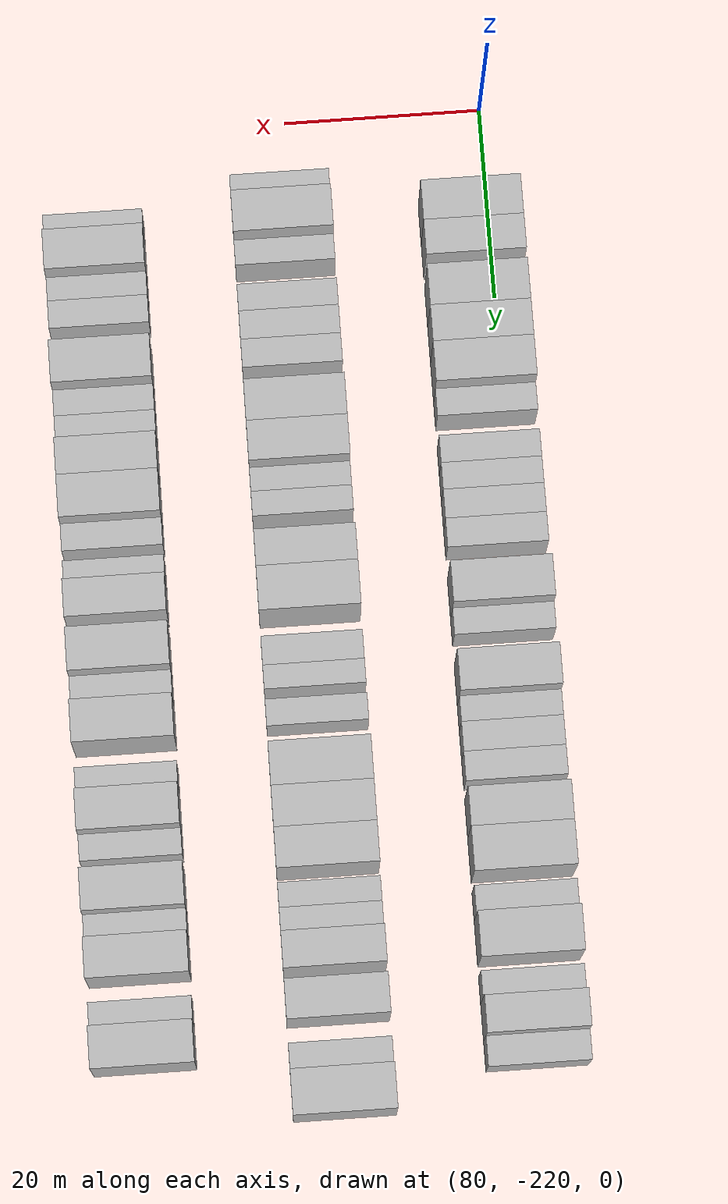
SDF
<sdf version="1.6">
 <world name="default">
  <model name="building_566">
   <static>1</static>
   <pose>82.0000 -208.0822 0 0.000000 0.000000 0.000000</pose>
   <link name="link">
    <pose>0 0 4.50 0 0 0</pose>
    <collision name="collision"><geometry><box><size>10.0000 4.1189 9.0000</size></box></geometry></collision>
    <visual name="visual">
     <cast_shadows>0</cast_shadows>
     <geometry><box><size>10.0000 4.1189 9.0000</size></box></geometry>
     <material>
      <script>
       <uri>model://HANNAS_wall/materials/scripts</uri>
       <uri>model://HANNAS_wall/materials/textures</uri>
       <name>vrc/HANNAS_wall</name>
      </script>
     </material>
    </visual>
   </link>
  </model>
  <model name="building_567">
   <static>1</static>
   <pose>82.0000 -204.2216 0 0.000000 0.000000 0.000000</pose>
   <link name="link">
    <pose>0 0 4.50 0 0 0</pose>
    <collision name="collision"><geometry><box><size>10.0000 3.6021 9.0000</size></box></geometry></collision>
    <visual name="visual">
     <cast_shadows>0</cast_shadows>
     <geometry><box><size>10.0000 3.6021 9.0000</size></box></geometry>
     <material>
      <script>
       <uri>model://HANNAS_wall/materials/scripts</uri>
       <uri>model://HANNAS_wall/materials/textures</uri>
       <name>vrc/HANNAS_wall</name>
      </script>
     </material>
    </visual>
   </link>
  </model>
  <model name="building_568">
   <static>1</static>
   <pose>82.0000 -199.3043 0 0.000000 0.000000 0.000000</pose>
   <link name="link">
    <pose>0 0 4.50 0 0 0</pose>
    <collision name="collision"><geometry><box><size>10.0000 4.2326 9.0000</size></box></geometry></collision>
    <visual name="visual">
     <cast_shadows>0</cast_shadows>
     <geometry><box><size>10.0000 4.2326 9.0000</size></box></geometry>
     <material>
      <script>
       <uri>model://HANNAS_wall/materials/scripts</uri>
       <uri>model://HANNAS_wall/materials/textures</uri>
       <name>vrc/HANNAS_wall</name>
      </script>
     </material>
    </visual>
   </link>
  </model>
  <model name="building_569">
   <static>1</static>
   <pose>82.0000 -195.3294 0 0.000000 0.000000 0.000000</pose>
   <link name="link">
    <pose>0 0 4.50 0 0 0</pose>
    <collision name="collision"><geometry><box><size>10.0000 3.7172 9.0000</size></box></geometry></collision>
    <visual name="visual">
     <cast_shadows>0</cast_shadows>
     <geometry><box><size>10.0000 3.7172 9.0000</size></box></geometry>
     <material>
      <script>
       <uri>model://HANNAS_wall/materials/scripts</uri>
       <uri>model://HANNAS_wall/materials/textures</uri>
       <name>vrc/HANNAS_wall</name>
      </script>
     </material>
    </visual>
   </link>
  </model>
  <model name="building_570">
   <static>1</static>
   <pose>82.0000 -191.4205 0 0.000000 0.000000 0.000000</pose>
   <link name="link">
    <pose>0 0 4.50 0 0 0</pose>
    <collision name="collision"><geometry><box><size>10.0000 4.1006 9.0000</size></box></geometry></collision>
    <visual name="visual">
     <cast_shadows>0</cast_shadows>
     <geometry><box><size>10.0000 4.1006 9.0000</size></box></geometry>
     <material>
      <script>
       <uri>model://HANNAS_wall/materials/scripts</uri>
       <uri>model://HANNAS_wall/materials/textures</uri>
       <name>vrc/HANNAS_wall</name>
      </script>
     </material>
    </visual>
   </link>
  </model>
  <model name="building_571">
   <static>1</static>
   <pose>82.0000 -187.9681 0 0.000000 0.000000 0.000000</pose>
   <link name="link">
    <pose>0 0 3.00 0 0 0</pose>
    <collision name="collision"><geometry><box><size>10.0000 2.8042 6.0000</size></box></geometry></collision>
    <visual name="visual">
     <cast_shadows>0</cast_shadows>
     <geometry><box><size>10.0000 2.8042 6.0000</size></box></geometry>
     <material>
      <script>
       <uri>model://HANNAS_wall/materials/scripts</uri>
       <uri>model://HANNAS_wall/materials/textures</uri>
       <name>vrc/HANNAS_wall</name>
      </script>
     </material>
    </visual>
   </link>
  </model>
  <model name="building_572">
   <static>1</static>
   <pose>82.0000 -183.1764 0 0.000000 0.000000 0.000000</pose>
   <link name="link">
    <pose>0 0 3.00 0 0 0</pose>
    <collision name="collision"><geometry><box><size>10.0000 2.7790 6.0000</size></box></geometry></collision>
    <visual name="visual">
     <cast_shadows>0</cast_shadows>
     <geometry><box><size>10.0000 2.7790 6.0000</size></box></geometry>
     <material>
      <script>
       <uri>model://HANNAS_wall/materials/scripts</uri>
       <uri>model://HANNAS_wall/materials/textures</uri>
       <name>vrc/HANNAS_wall</name>
      </script>
     </material>
    </visual>
   </link>
  </model>
  <model name="building_573">
   <static>1</static>
   <pose>82.0000 -180.4270 0 0.000000 0.000000 0.000000</pose>
   <link name="link">
    <pose>0 0 3.00 0 0 0</pose>
    <collision name="collision"><geometry><box><size>10.0000 2.7198 6.0000</size></box></geometry></collision>
    <visual name="visual">
     <cast_shadows>0</cast_shadows>
     <geometry><box><size>10.0000 2.7198 6.0000</size></box></geometry>
     <material>
      <script>
       <uri>model://HANNAS_wall/materials/scripts</uri>
       <uri>model://HANNAS_wall/materials/textures</uri>
       <name>vrc/HANNAS_wall</name>
      </script>
     </material>
    </visual>
   </link>
  </model>
  <model name="building_574">
   <static>1</static>
   <pose>82.0000 -177.5936 0 0.000000 0.000000 0.000000</pose>
   <link name="link">
    <pose>0 0 3.00 0 0 0</pose>
    <collision name="collision"><geometry><box><size>10.0000 2.9471 6.0000</size></box></geometry></collision>
    <visual name="visual">
     <cast_shadows>0</cast_shadows>
     <geometry><box><size>10.0000 2.9471 6.0000</size></box></geometry>
     <material>
      <script>
       <uri>model://HANNAS_wall/materials/scripts</uri>
       <uri>model://HANNAS_wall/materials/textures</uri>
       <name>vrc/HANNAS_wall</name>
      </script>
     </material>
    </visual>
   </link>
  </model>
  <model name="building_575">
   <static>1</static>
   <pose>82.0000 -174.6498 0 0.000000 0.000000 0.000000</pose>
   <link name="link">
    <pose>0 0 3.00 0 0 0</pose>
    <collision name="collision"><geometry><box><size>10.0000 2.9405 6.0000</size></box></geometry></collision>
    <visual name="visual">
     <cast_shadows>0</cast_shadows>
     <geometry><box><size>10.0000 2.9405 6.0000</size></box></geometry>
     <material>
      <script>
       <uri>model://HANNAS_wall/materials/scripts</uri>
       <uri>model://HANNAS_wall/materials/textures</uri>
       <name>vrc/HANNAS_wall</name>
      </script>
     </material>
    </visual>
   </link>
  </model>
  <model name="building_576">
   <static>1</static>
   <pose>82.0000 -169.1119 0 0.000000 0.000000 0.000000</pose>
   <link name="link">
    <pose>0 0 4.50 0 0 0</pose>
    <collision name="collision"><geometry><box><size>10.0000 4.1353 9.0000</size></box></geometry></collision>
    <visual name="visual">
     <cast_shadows>0</cast_shadows>
     <geometry><box><size>10.0000 4.1353 9.0000</size></box></geometry>
     <material>
      <script>
       <uri>model://HANNAS_wall/materials/scripts</uri>
       <uri>model://HANNAS_wall/materials/textures</uri>
       <name>vrc/HANNAS_wall</name>
      </script>
     </material>
    </visual>
   </link>
  </model>
  <model name="building_577">
   <static>1</static>
   <pose>82.0000 -165.7086 0 0.000000 0.000000 0.000000</pose>
   <link name="link">
    <pose>0 0 3.00 0 0 0</pose>
    <collision name="collision"><geometry><box><size>10.0000 2.6713 6.0000</size></box></geometry></collision>
    <visual name="visual">
     <cast_shadows>0</cast_shadows>
     <geometry><box><size>10.0000 2.6713 6.0000</size></box></geometry>
     <material>
      <script>
       <uri>model://HANNAS_wall/materials/scripts</uri>
       <uri>model://HANNAS_wall/materials/textures</uri>
       <name>vrc/HANNAS_wall</name>
      </script>
     </material>
    </visual>
   </link>
  </model>
  <model name="building_578">
   <static>1</static>
   <pose>82.0000 -160.3154 0 0.000000 0.000000 0.000000</pose>
   <link name="link">
    <pose>0 0 4.50 0 0 0</pose>
    <collision name="collision"><geometry><box><size>10.0000 4.1151 9.0000</size></box></geometry></collision>
    <visual name="visual">
     <cast_shadows>0</cast_shadows>
     <geometry><box><size>10.0000 4.1151 9.0000</size></box></geometry>
     <material>
      <script>
       <uri>model://HANNAS_wall/materials/scripts</uri>
       <uri>model://HANNAS_wall/materials/textures</uri>
       <name>vrc/HANNAS_wall</name>
      </script>
     </material>
    </visual>
   </link>
  </model>
  <model name="building_579">
   <static>1</static>
   <pose>82.0000 -156.9821 0 0.000000 0.000000 0.000000</pose>
   <link name="link">
    <pose>0 0 3.00 0 0 0</pose>
    <collision name="collision"><geometry><box><size>10.0000 2.5516 6.0000</size></box></geometry></collision>
    <visual name="visual">
     <cast_shadows>0</cast_shadows>
     <geometry><box><size>10.0000 2.5516 6.0000</size></box></geometry>
     <material>
      <script>
       <uri>model://HANNAS_wall/materials/scripts</uri>
       <uri>model://HANNAS_wall/materials/textures</uri>
       <name>vrc/HANNAS_wall</name>
      </script>
     </material>
    </visual>
   </link>
  </model>
  <model name="building_580">
   <static>1</static>
   <pose>82.0000 -154.2321 0 0.000000 0.000000 0.000000</pose>
   <link name="link">
    <pose>0 0 3.00 0 0 0</pose>
    <collision name="collision"><geometry><box><size>10.0000 2.9485 6.0000</size></box></geometry></collision>
    <visual name="visual">
     <cast_shadows>0</cast_shadows>
     <geometry><box><size>10.0000 2.9485 6.0000</size></box></geometry>
     <material>
      <script>
       <uri>model://HANNAS_wall/materials/scripts</uri>
       <uri>model://HANNAS_wall/materials/textures</uri>
       <name>vrc/HANNAS_wall</name>
      </script>
     </material>
    </visual>
   </link>
  </model>
  <model name="building_581">
   <static>1</static>
   <pose>82.0000 -151.2951 0 0.000000 0.000000 0.000000</pose>
   <link name="link">
    <pose>0 0 3.00 0 0 0</pose>
    <collision name="collision"><geometry><box><size>10.0000 2.9255 6.0000</size></box></geometry></collision>
    <visual name="visual">
     <cast_shadows>0</cast_shadows>
     <geometry><box><size>10.0000 2.9255 6.0000</size></box></geometry>
     <material>
      <script>
       <uri>model://HANNAS_wall/materials/scripts</uri>
       <uri>model://HANNAS_wall/materials/textures</uri>
       <name>vrc/HANNAS_wall</name>
      </script>
     </material>
    </visual>
   </link>
  </model>
  <model name="building_582">
   <static>1</static>
   <pose>82.0000 -146.8951 0 0.000000 0.000000 0.000000</pose>
   <link name="link">
    <pose>0 0 4.50 0 0 0</pose>
    <collision name="collision"><geometry><box><size>10.0000 3.8745 9.0000</size></box></geometry></collision>
    <visual name="visual">
     <cast_shadows>0</cast_shadows>
     <geometry><box><size>10.0000 3.8745 9.0000</size></box></geometry>
     <material>
      <script>
       <uri>model://HANNAS_wall/materials/scripts</uri>
       <uri>model://HANNAS_wall/materials/textures</uri>
       <name>vrc/HANNAS_wall</name>
      </script>
     </material>
    </visual>
   </link>
  </model>
  <model name="building_583">
   <static>1</static>
   <pose>82.0000 -142.7711 0 0.000000 0.000000 0.000000</pose>
   <link name="link">
    <pose>0 0 4.50 0 0 0</pose>
    <collision name="collision"><geometry><box><size>10.0000 4.3734 9.0000</size></box></geometry></collision>
    <visual name="visual">
     <cast_shadows>0</cast_shadows>
     <geometry><box><size>10.0000 4.3734 9.0000</size></box></geometry>
     <material>
      <script>
       <uri>model://HANNAS_wall/materials/scripts</uri>
       <uri>model://HANNAS_wall/materials/textures</uri>
       <name>vrc/HANNAS_wall</name>
      </script>
     </material>
    </visual>
   </link>
  </model>
  <model name="building_584">
   <static>1</static>
   <pose>82.0000 -138.1703 0 0.000000 0.000000 0.000000</pose>
   <link name="link">
    <pose>0 0 3.00 0 0 0</pose>
    <collision name="collision"><geometry><box><size>10.0000 2.8282 6.0000</size></box></geometry></collision>
    <visual name="visual">
     <cast_shadows>0</cast_shadows>
     <geometry><box><size>10.0000 2.8282 6.0000</size></box></geometry>
     <material>
      <script>
       <uri>model://HANNAS_wall/materials/scripts</uri>
       <uri>model://HANNAS_wall/materials/textures</uri>
       <name>vrc/HANNAS_wall</name>
      </script>
     </material>
    </visual>
   </link>
  </model>
  <model name="building_585">
   <static>1</static>
   <pose>82.0000 -134.5278 0 0.000000 0.000000 0.000000</pose>
   <link name="link">
    <pose>0 0 4.50 0 0 0</pose>
    <collision name="collision"><geometry><box><size>10.0000 4.4569 9.0000</size></box></geometry></collision>
    <visual name="visual">
     <cast_shadows>0</cast_shadows>
     <geometry><box><size>10.0000 4.4569 9.0000</size></box></geometry>
     <material>
      <script>
       <uri>model://HANNAS_wall/materials/scripts</uri>
       <uri>model://HANNAS_wall/materials/textures</uri>
       <name>vrc/HANNAS_wall</name>
      </script>
     </material>
    </visual>
   </link>
  </model>
  <model name="building_586">
   <static>1</static>
   <pose>82.0000 -129.9726 0 0.000000 0.000000 0.000000</pose>
   <link name="link">
    <pose>0 0 3.00 0 0 0</pose>
    <collision name="collision"><geometry><box><size>10.0000 2.6535 6.0000</size></box></geometry></collision>
    <visual name="visual">
     <cast_shadows>0</cast_shadows>
     <geometry><box><size>10.0000 2.6535 6.0000</size></box></geometry>
     <material>
      <script>
       <uri>model://HANNAS_wall/materials/scripts</uri>
       <uri>model://HANNAS_wall/materials/textures</uri>
       <name>vrc/HANNAS_wall</name>
      </script>
     </material>
    </visual>
   </link>
  </model>
  <model name="building_587">
   <static>1</static>
   <pose>82.0000 -126.8335 0 0.000000 0.000000 0.000000</pose>
   <link name="link">
    <pose>0 0 4.50 0 0 0</pose>
    <collision name="collision"><geometry><box><size>10.0000 3.6247 9.0000</size></box></geometry></collision>
    <visual name="visual">
     <cast_shadows>0</cast_shadows>
     <geometry><box><size>10.0000 3.6247 9.0000</size></box></geometry>
     <material>
      <script>
       <uri>model://HANNAS_wall/materials/scripts</uri>
       <uri>model://HANNAS_wall/materials/textures</uri>
       <name>vrc/HANNAS_wall</name>
      </script>
     </material>
    </visual>
   </link>
  </model>
  <model name="building_588">
   <static>1</static>
   <pose>82.0000 -123.5409 0 0.000000 0.000000 0.000000</pose>
   <link name="link">
    <pose>0 0 3.00 0 0 0</pose>
    <collision name="collision"><geometry><box><size>10.0000 2.9605 6.0000</size></box></geometry></collision>
    <visual name="visual">
     <cast_shadows>0</cast_shadows>
     <geometry><box><size>10.0000 2.9605 6.0000</size></box></geometry>
     <material>
      <script>
       <uri>model://HANNAS_wall/materials/scripts</uri>
       <uri>model://HANNAS_wall/materials/textures</uri>
       <name>vrc/HANNAS_wall</name>
      </script>
     </material>
    </visual>
   </link>
  </model>
  <model name="building_744">
   <static>1</static>
   <pose>101.0000 -211.6831 0 0.000000 0.000000 0.000000</pose>
   <link name="link">
    <pose>0 0 3.00 0 0 0</pose>
    <collision name="collision"><geometry><box><size>10.0000 2.5674 6.0000</size></box></geometry></collision>
    <visual name="visual">
     <cast_shadows>0</cast_shadows>
     <geometry><box><size>10.0000 2.5674 6.0000</size></box></geometry>
     <material>
      <script>
       <uri>model://HANNAS_wall/materials/scripts</uri>
       <uri>model://HANNAS_wall/materials/textures</uri>
       <name>vrc/HANNAS_wall</name>
      </script>
     </material>
    </visual>
   </link>
  </model>
  <model name="building_745">
   <static>1</static>
   <pose>101.0000 -208.2493 0 0.000000 0.000000 0.000000</pose>
   <link name="link">
    <pose>0 0 4.50 0 0 0</pose>
    <collision name="collision"><geometry><box><size>10.0000 4.3002 9.0000</size></box></geometry></collision>
    <visual name="visual">
     <cast_shadows>0</cast_shadows>
     <geometry><box><size>10.0000 4.3002 9.0000</size></box></geometry>
     <material>
      <script>
       <uri>model://HANNAS_wall/materials/scripts</uri>
       <uri>model://HANNAS_wall/materials/textures</uri>
       <name>vrc/HANNAS_wall</name>
      </script>
     </material>
    </visual>
   </link>
  </model>
  <model name="building_746">
   <static>1</static>
   <pose>101.0000 -204.7949 0 0.000000 0.000000 0.000000</pose>
   <link name="link">
    <pose>0 0 3.00 0 0 0</pose>
    <collision name="collision"><geometry><box><size>10.0000 2.6085 6.0000</size></box></geometry></collision>
    <visual name="visual">
     <cast_shadows>0</cast_shadows>
     <geometry><box><size>10.0000 2.6085 6.0000</size></box></geometry>
     <material>
      <script>
       <uri>model://HANNAS_wall/materials/scripts</uri>
       <uri>model://HANNAS_wall/materials/textures</uri>
       <name>vrc/HANNAS_wall</name>
      </script>
     </material>
    </visual>
   </link>
  </model>
  <model name="building_747">
   <static>1</static>
   <pose>101.0000 -200.1099 0 0.000000 0.000000 0.000000</pose>
   <link name="link">
    <pose>0 0 3.00 0 0 0</pose>
    <collision name="collision"><geometry><box><size>10.0000 2.7615 6.0000</size></box></geometry></collision>
    <visual name="visual">
     <cast_shadows>0</cast_shadows>
     <geometry><box><size>10.0000 2.7615 6.0000</size></box></geometry>
     <material>
      <script>
       <uri>model://HANNAS_wall/materials/scripts</uri>
       <uri>model://HANNAS_wall/materials/textures</uri>
       <name>vrc/HANNAS_wall</name>
      </script>
     </material>
    </visual>
   </link>
  </model>
  <model name="building_748">
   <static>1</static>
   <pose>101.0000 -197.2600 0 0.000000 0.000000 0.000000</pose>
   <link name="link">
    <pose>0 0 3.00 0 0 0</pose>
    <collision name="collision"><geometry><box><size>10.0000 2.9385 6.0000</size></box></geometry></collision>
    <visual name="visual">
     <cast_shadows>0</cast_shadows>
     <geometry><box><size>10.0000 2.9385 6.0000</size></box></geometry>
     <material>
      <script>
       <uri>model://HANNAS_wall/materials/scripts</uri>
       <uri>model://HANNAS_wall/materials/textures</uri>
       <name>vrc/HANNAS_wall</name>
      </script>
     </material>
    </visual>
   </link>
  </model>
  <model name="building_749">
   <static>1</static>
   <pose>101.0000 -194.3303 0 0.000000 0.000000 0.000000</pose>
   <link name="link">
    <pose>0 0 3.00 0 0 0</pose>
    <collision name="collision"><geometry><box><size>10.0000 2.9209 6.0000</size></box></geometry></collision>
    <visual name="visual">
     <cast_shadows>0</cast_shadows>
     <geometry><box><size>10.0000 2.9209 6.0000</size></box></geometry>
     <material>
      <script>
       <uri>model://HANNAS_wall/materials/scripts</uri>
       <uri>model://HANNAS_wall/materials/textures</uri>
       <name>vrc/HANNAS_wall</name>
      </script>
     </material>
    </visual>
   </link>
  </model>
  <model name="building_750">
   <static>1</static>
   <pose>101.0000 -188.7590 0 0.000000 0.000000 0.000000</pose>
   <link name="link">
    <pose>0 0 4.50 0 0 0</pose>
    <collision name="collision"><geometry><box><size>10.0000 4.2217 9.0000</size></box></geometry></collision>
    <visual name="visual">
     <cast_shadows>0</cast_shadows>
     <geometry><box><size>10.0000 4.2217 9.0000</size></box></geometry>
     <material>
      <script>
       <uri>model://HANNAS_wall/materials/scripts</uri>
       <uri>model://HANNAS_wall/materials/textures</uri>
       <name>vrc/HANNAS_wall</name>
      </script>
     </material>
    </visual>
   </link>
  </model>
  <model name="building_751">
   <static>1</static>
   <pose>101.0000 -184.6169 0 0.000000 0.000000 0.000000</pose>
   <link name="link">
    <pose>0 0 4.50 0 0 0</pose>
    <collision name="collision"><geometry><box><size>10.0000 4.0625 9.0000</size></box></geometry></collision>
    <visual name="visual">
     <cast_shadows>0</cast_shadows>
     <geometry><box><size>10.0000 4.0625 9.0000</size></box></geometry>
     <material>
      <script>
       <uri>model://HANNAS_wall/materials/scripts</uri>
       <uri>model://HANNAS_wall/materials/textures</uri>
       <name>vrc/HANNAS_wall</name>
      </script>
     </material>
    </visual>
   </link>
  </model>
  <model name="building_752">
   <static>1</static>
   <pose>101.0000 -181.3728 0 0.000000 0.000000 0.000000</pose>
   <link name="link">
    <pose>0 0 3.00 0 0 0</pose>
    <collision name="collision"><geometry><box><size>10.0000 2.4258 6.0000</size></box></geometry></collision>
    <visual name="visual">
     <cast_shadows>0</cast_shadows>
     <geometry><box><size>10.0000 2.4258 6.0000</size></box></geometry>
     <material>
      <script>
       <uri>model://HANNAS_wall/materials/scripts</uri>
       <uri>model://HANNAS_wall/materials/textures</uri>
       <name>vrc/HANNAS_wall</name>
      </script>
     </material>
    </visual>
   </link>
  </model>
  <model name="building_753">
   <static>1</static>
   <pose>101.0000 -178.8991 0 0.000000 0.000000 0.000000</pose>
   <link name="link">
    <pose>0 0 3.00 0 0 0</pose>
    <collision name="collision"><geometry><box><size>10.0000 2.5216 6.0000</size></box></geometry></collision>
    <visual name="visual">
     <cast_shadows>0</cast_shadows>
     <geometry><box><size>10.0000 2.5216 6.0000</size></box></geometry>
     <material>
      <script>
       <uri>model://HANNAS_wall/materials/scripts</uri>
       <uri>model://HANNAS_wall/materials/textures</uri>
       <name>vrc/HANNAS_wall</name>
      </script>
     </material>
    </visual>
   </link>
  </model>
  <model name="building_754">
   <static>1</static>
   <pose>101.0000 -173.7997 0 0.000000 0.000000 0.000000</pose>
   <link name="link">
    <pose>0 0 4.50 0 0 0</pose>
    <collision name="collision"><geometry><box><size>10.0000 3.6773 9.0000</size></box></geometry></collision>
    <visual name="visual">
     <cast_shadows>0</cast_shadows>
     <geometry><box><size>10.0000 3.6773 9.0000</size></box></geometry>
     <material>
      <script>
       <uri>model://HANNAS_wall/materials/scripts</uri>
       <uri>model://HANNAS_wall/materials/textures</uri>
       <name>vrc/HANNAS_wall</name>
      </script>
     </material>
    </visual>
   </link>
  </model>
  <model name="building_755">
   <static>1</static>
   <pose>101.0000 -169.7432 0 0.000000 0.000000 0.000000</pose>
   <link name="link">
    <pose>0 0 4.50 0 0 0</pose>
    <collision name="collision"><geometry><box><size>10.0000 4.4357 9.0000</size></box></geometry></collision>
    <visual name="visual">
     <cast_shadows>0</cast_shadows>
     <geometry><box><size>10.0000 4.4357 9.0000</size></box></geometry>
     <material>
      <script>
       <uri>model://HANNAS_wall/materials/scripts</uri>
       <uri>model://HANNAS_wall/materials/textures</uri>
       <name>vrc/HANNAS_wall</name>
      </script>
     </material>
    </visual>
   </link>
  </model>
  <model name="building_756">
   <static>1</static>
   <pose>101.0000 -164.0808 0 0.000000 0.000000 0.000000</pose>
   <link name="link">
    <pose>0 0 3.00 0 0 0</pose>
    <collision name="collision"><geometry><box><size>10.0000 2.8891 6.0000</size></box></geometry></collision>
    <visual name="visual">
     <cast_shadows>0</cast_shadows>
     <geometry><box><size>10.0000 2.8891 6.0000</size></box></geometry>
     <material>
      <script>
       <uri>model://HANNAS_wall/materials/scripts</uri>
       <uri>model://HANNAS_wall/materials/textures</uri>
       <name>vrc/HANNAS_wall</name>
      </script>
     </material>
    </visual>
   </link>
  </model>
  <model name="building_757">
   <static>1</static>
   <pose>101.0000 -161.4349 0 0.000000 0.000000 0.000000</pose>
   <link name="link">
    <pose>0 0 3.00 0 0 0</pose>
    <collision name="collision"><geometry><box><size>10.0000 2.4028 6.0000</size></box></geometry></collision>
    <visual name="visual">
     <cast_shadows>0</cast_shadows>
     <geometry><box><size>10.0000 2.4028 6.0000</size></box></geometry>
     <material>
      <script>
       <uri>model://HANNAS_wall/materials/scripts</uri>
       <uri>model://HANNAS_wall/materials/textures</uri>
       <name>vrc/HANNAS_wall</name>
      </script>
     </material>
    </visual>
   </link>
  </model>
  <model name="building_758">
   <static>1</static>
   <pose>101.0000 -157.8983 0 0.000000 0.000000 0.000000</pose>
   <link name="link">
    <pose>0 0 3.00 0 0 0</pose>
    <collision name="collision"><geometry><box><size>10.0000 2.6703 6.0000</size></box></geometry></collision>
    <visual name="visual">
     <cast_shadows>0</cast_shadows>
     <geometry><box><size>10.0000 2.6703 6.0000</size></box></geometry>
     <material>
      <script>
       <uri>model://HANNAS_wall/materials/scripts</uri>
       <uri>model://HANNAS_wall/materials/textures</uri>
       <name>vrc/HANNAS_wall</name>
      </script>
     </material>
    </visual>
   </link>
  </model>
  <model name="building_759">
   <static>1</static>
   <pose>101.0000 -152.3972 0 0.000000 0.000000 0.000000</pose>
   <link name="link">
    <pose>0 0 4.50 0 0 0</pose>
    <collision name="collision"><geometry><box><size>10.0000 4.3319 9.0000</size></box></geometry></collision>
    <visual name="visual">
     <cast_shadows>0</cast_shadows>
     <geometry><box><size>10.0000 4.3319 9.0000</size></box></geometry>
     <material>
      <script>
       <uri>model://HANNAS_wall/materials/scripts</uri>
       <uri>model://HANNAS_wall/materials/textures</uri>
       <name>vrc/HANNAS_wall</name>
      </script>
     </material>
    </visual>
   </link>
  </model>
  <model name="building_760">
   <static>1</static>
   <pose>101.0000 -148.1982 0 0.000000 0.000000 0.000000</pose>
   <link name="link">
    <pose>0 0 4.50 0 0 0</pose>
    <collision name="collision"><geometry><box><size>10.0000 4.0661 9.0000</size></box></geometry></collision>
    <visual name="visual">
     <cast_shadows>0</cast_shadows>
     <geometry><box><size>10.0000 4.0661 9.0000</size></box></geometry>
     <material>
      <script>
       <uri>model://HANNAS_wall/materials/scripts</uri>
       <uri>model://HANNAS_wall/materials/textures</uri>
       <name>vrc/HANNAS_wall</name>
      </script>
     </material>
    </visual>
   </link>
  </model>
  <model name="building_761">
   <static>1</static>
   <pose>101.0000 -144.1663 0 0.000000 0.000000 0.000000</pose>
   <link name="link">
    <pose>0 0 4.50 0 0 0</pose>
    <collision name="collision"><geometry><box><size>10.0000 3.9977 9.0000</size></box></geometry></collision>
    <visual name="visual">
     <cast_shadows>0</cast_shadows>
     <geometry><box><size>10.0000 3.9977 9.0000</size></box></geometry>
     <material>
      <script>
       <uri>model://HANNAS_wall/materials/scripts</uri>
       <uri>model://HANNAS_wall/materials/textures</uri>
       <name>vrc/HANNAS_wall</name>
      </script>
     </material>
    </visual>
   </link>
  </model>
  <model name="building_762">
   <static>1</static>
   <pose>101.0000 -139.9511 0 0.000000 0.000000 0.000000</pose>
   <link name="link">
    <pose>0 0 3.00 0 0 0</pose>
    <collision name="collision"><geometry><box><size>10.0000 2.4328 6.0000</size></box></geometry></collision>
    <visual name="visual">
     <cast_shadows>0</cast_shadows>
     <geometry><box><size>10.0000 2.4328 6.0000</size></box></geometry>
     <material>
      <script>
       <uri>model://HANNAS_wall/materials/scripts</uri>
       <uri>model://HANNAS_wall/materials/textures</uri>
       <name>vrc/HANNAS_wall</name>
      </script>
     </material>
    </visual>
   </link>
  </model>
  <model name="building_763">
   <static>1</static>
   <pose>101.0000 -137.4281 0 0.000000 0.000000 0.000000</pose>
   <link name="link">
    <pose>0 0 3.00 0 0 0</pose>
    <collision name="collision"><geometry><box><size>10.0000 2.6131 6.0000</size></box></geometry></collision>
    <visual name="visual">
     <cast_shadows>0</cast_shadows>
     <geometry><box><size>10.0000 2.6131 6.0000</size></box></geometry>
     <material>
      <script>
       <uri>model://HANNAS_wall/materials/scripts</uri>
       <uri>model://HANNAS_wall/materials/textures</uri>
       <name>vrc/HANNAS_wall</name>
      </script>
     </material>
    </visual>
   </link>
  </model>
  <model name="building_764">
   <static>1</static>
   <pose>101.0000 -134.3201 0 0.000000 0.000000 0.000000</pose>
   <link name="link">
    <pose>0 0 4.50 0 0 0</pose>
    <collision name="collision"><geometry><box><size>10.0000 3.6029 9.0000</size></box></geometry></collision>
    <visual name="visual">
     <cast_shadows>0</cast_shadows>
     <geometry><box><size>10.0000 3.6029 9.0000</size></box></geometry>
     <material>
      <script>
       <uri>model://HANNAS_wall/materials/scripts</uri>
       <uri>model://HANNAS_wall/materials/textures</uri>
       <name>vrc/HANNAS_wall</name>
      </script>
     </material>
    </visual>
   </link>
  </model>
  <model name="building_765">
   <static>1</static>
   <pose>101.0000 -129.5764 0 0.000000 0.000000 0.000000</pose>
   <link name="link">
    <pose>0 0 4.50 0 0 0</pose>
    <collision name="collision"><geometry><box><size>10.0000 3.8846 9.0000</size></box></geometry></collision>
    <visual name="visual">
     <cast_shadows>0</cast_shadows>
     <geometry><box><size>10.0000 3.8846 9.0000</size></box></geometry>
     <material>
      <script>
       <uri>model://HANNAS_wall/materials/scripts</uri>
       <uri>model://HANNAS_wall/materials/textures</uri>
       <name>vrc/HANNAS_wall</name>
      </script>
     </material>
    </visual>
   </link>
  </model>
  <model name="building_766">
   <static>1</static>
   <pose>101.0000 -124.2773 0 0.000000 0.000000 0.000000</pose>
   <link name="link">
    <pose>0 0 3.00 0 0 0</pose>
    <collision name="collision"><geometry><box><size>10.0000 2.7135 6.0000</size></box></geometry></collision>
    <visual name="visual">
     <cast_shadows>0</cast_shadows>
     <geometry><box><size>10.0000 2.7135 6.0000</size></box></geometry>
     <material>
      <script>
       <uri>model://HANNAS_wall/materials/scripts</uri>
       <uri>model://HANNAS_wall/materials/textures</uri>
       <name>vrc/HANNAS_wall</name>
      </script>
     </material>
    </visual>
   </link>
  </model>
  <model name="building_767">
   <static>1</static>
   <pose>101.0000 -120.7127 0 0.000000 0.000000 0.000000</pose>
   <link name="link">
    <pose>0 0 4.50 0 0 0</pose>
    <collision name="collision"><geometry><box><size>10.0000 4.4157 9.0000</size></box></geometry></collision>
    <visual name="visual">
     <cast_shadows>0</cast_shadows>
     <geometry><box><size>10.0000 4.4157 9.0000</size></box></geometry>
     <material>
      <script>
       <uri>model://HANNAS_wall/materials/scripts</uri>
       <uri>model://HANNAS_wall/materials/textures</uri>
       <name>vrc/HANNAS_wall</name>
      </script>
     </material>
    </visual>
   </link>
  </model>
  <model name="building_914">
   <static>1</static>
   <pose>120.0000 -208.8159 0 0.000000 0.000000 0.000000</pose>
   <link name="link">
    <pose>0 0 3.00 0 0 0</pose>
    <collision name="collision"><geometry><box><size>10.0000 2.4220 6.0000</size></box></geometry></collision>
    <visual name="visual">
     <cast_shadows>0</cast_shadows>
     <geometry><box><size>10.0000 2.4220 6.0000</size></box></geometry>
     <material>
      <script>
       <uri>model://HANNAS_wall/materials/scripts</uri>
       <uri>model://HANNAS_wall/materials/textures</uri>
       <name>vrc/HANNAS_wall</name>
      </script>
     </material>
    </visual>
   </link>
  </model>
  <model name="building_915">
   <static>1</static>
   <pose>120.0000 -205.5500 0 0.000000 0.000000 0.000000</pose>
   <link name="link">
    <pose>0 0 4.50 0 0 0</pose>
    <collision name="collision"><geometry><box><size>10.0000 4.1099 9.0000</size></box></geometry></collision>
    <visual name="visual">
     <cast_shadows>0</cast_shadows>
     <geometry><box><size>10.0000 4.1099 9.0000</size></box></geometry>
     <material>
      <script>
       <uri>model://HANNAS_wall/materials/scripts</uri>
       <uri>model://HANNAS_wall/materials/textures</uri>
       <name>vrc/HANNAS_wall</name>
      </script>
     </material>
    </visual>
   </link>
  </model>
  <model name="building_916">
   <static>1</static>
   <pose>120.0000 -202.2819 0 0.000000 0.000000 0.000000</pose>
   <link name="link">
    <pose>0 0 3.00 0 0 0</pose>
    <collision name="collision"><geometry><box><size>10.0000 2.4262 6.0000</size></box></geometry></collision>
    <visual name="visual">
     <cast_shadows>0</cast_shadows>
     <geometry><box><size>10.0000 2.4262 6.0000</size></box></geometry>
     <material>
      <script>
       <uri>model://HANNAS_wall/materials/scripts</uri>
       <uri>model://HANNAS_wall/materials/textures</uri>
       <name>vrc/HANNAS_wall</name>
      </script>
     </material>
    </visual>
   </link>
  </model>
  <model name="building_917">
   <static>1</static>
   <pose>120.0000 -199.6383 0 0.000000 0.000000 0.000000</pose>
   <link name="link">
    <pose>0 0 3.00 0 0 0</pose>
    <collision name="collision"><geometry><box><size>10.0000 2.8611 6.0000</size></box></geometry></collision>
    <visual name="visual">
     <cast_shadows>0</cast_shadows>
     <geometry><box><size>10.0000 2.8611 6.0000</size></box></geometry>
     <material>
      <script>
       <uri>model://HANNAS_wall/materials/scripts</uri>
       <uri>model://HANNAS_wall/materials/textures</uri>
       <name>vrc/HANNAS_wall</name>
      </script>
     </material>
    </visual>
   </link>
  </model>
  <model name="building_918">
   <static>1</static>
   <pose>120.0000 -194.0200 0 0.000000 0.000000 0.000000</pose>
   <link name="link">
    <pose>0 0 4.50 0 0 0</pose>
    <collision name="collision"><geometry><box><size>10.0000 4.3754 9.0000</size></box></geometry></collision>
    <visual name="visual">
     <cast_shadows>0</cast_shadows>
     <geometry><box><size>10.0000 4.3754 9.0000</size></box></geometry>
     <material>
      <script>
       <uri>model://HANNAS_wall/materials/scripts</uri>
       <uri>model://HANNAS_wall/materials/textures</uri>
       <name>vrc/HANNAS_wall</name>
      </script>
     </material>
    </visual>
   </link>
  </model>
  <model name="building_919">
   <static>1</static>
   <pose>120.0000 -190.5032 0 0.000000 0.000000 0.000000</pose>
   <link name="link">
    <pose>0 0 3.00 0 0 0</pose>
    <collision name="collision"><geometry><box><size>10.0000 2.6582 6.0000</size></box></geometry></collision>
    <visual name="visual">
     <cast_shadows>0</cast_shadows>
     <geometry><box><size>10.0000 2.6582 6.0000</size></box></geometry>
     <material>
      <script>
       <uri>model://HANNAS_wall/materials/scripts</uri>
       <uri>model://HANNAS_wall/materials/textures</uri>
       <name>vrc/HANNAS_wall</name>
      </script>
     </material>
    </visual>
   </link>
  </model>
  <model name="building_920">
   <static>1</static>
   <pose>120.0000 -187.7068 0 0.000000 0.000000 0.000000</pose>
   <link name="link">
    <pose>0 0 3.00 0 0 0</pose>
    <collision name="collision"><geometry><box><size>10.0000 2.9345 6.0000</size></box></geometry></collision>
    <visual name="visual">
     <cast_shadows>0</cast_shadows>
     <geometry><box><size>10.0000 2.9345 6.0000</size></box></geometry>
     <material>
      <script>
       <uri>model://HANNAS_wall/materials/scripts</uri>
       <uri>model://HANNAS_wall/materials/textures</uri>
       <name>vrc/HANNAS_wall</name>
      </script>
     </material>
    </visual>
   </link>
  </model>
  <model name="building_921">
   <static>1</static>
   <pose>120.0000 -184.3534 0 0.000000 0.000000 0.000000</pose>
   <link name="link">
    <pose>0 0 4.50 0 0 0</pose>
    <collision name="collision"><geometry><box><size>10.0000 3.7723 9.0000</size></box></geometry></collision>
    <visual name="visual">
     <cast_shadows>0</cast_shadows>
     <geometry><box><size>10.0000 3.7723 9.0000</size></box></geometry>
     <material>
      <script>
       <uri>model://HANNAS_wall/materials/scripts</uri>
       <uri>model://HANNAS_wall/materials/textures</uri>
       <name>vrc/HANNAS_wall</name>
      </script>
     </material>
    </visual>
   </link>
  </model>
  <model name="building_922">
   <static>1</static>
   <pose>120.0000 -180.3174 0 0.000000 0.000000 0.000000</pose>
   <link name="link">
    <pose>0 0 4.50 0 0 0</pose>
    <collision name="collision"><geometry><box><size>10.0000 4.2998 9.0000</size></box></geometry></collision>
    <visual name="visual">
     <cast_shadows>0</cast_shadows>
     <geometry><box><size>10.0000 4.2998 9.0000</size></box></geometry>
     <material>
      <script>
       <uri>model://HANNAS_wall/materials/scripts</uri>
       <uri>model://HANNAS_wall/materials/textures</uri>
       <name>vrc/HANNAS_wall</name>
      </script>
     </material>
    </visual>
   </link>
  </model>
  <model name="building_923">
   <static>1</static>
   <pose>120.0000 -176.7881 0 0.000000 0.000000 0.000000</pose>
   <link name="link">
    <pose>0 0 3.00 0 0 0</pose>
    <collision name="collision"><geometry><box><size>10.0000 2.7588 6.0000</size></box></geometry></collision>
    <visual name="visual">
     <cast_shadows>0</cast_shadows>
     <geometry><box><size>10.0000 2.7588 6.0000</size></box></geometry>
     <material>
      <script>
       <uri>model://HANNAS_wall/materials/scripts</uri>
       <uri>model://HANNAS_wall/materials/textures</uri>
       <name>vrc/HANNAS_wall</name>
      </script>
     </material>
    </visual>
   </link>
  </model>
  <model name="building_924">
   <static>1</static>
   <pose>120.0000 -173.1840 0 0.000000 0.000000 0.000000</pose>
   <link name="link">
    <pose>0 0 3.00 0 0 0</pose>
    <collision name="collision"><geometry><box><size>10.0000 2.4494 6.0000</size></box></geometry></collision>
    <visual name="visual">
     <cast_shadows>0</cast_shadows>
     <geometry><box><size>10.0000 2.4494 6.0000</size></box></geometry>
     <material>
      <script>
       <uri>model://HANNAS_wall/materials/scripts</uri>
       <uri>model://HANNAS_wall/materials/textures</uri>
       <name>vrc/HANNAS_wall</name>
      </script>
     </material>
    </visual>
   </link>
  </model>
  <model name="building_925">
   <static>1</static>
   <pose>120.0000 -170.0681 0 0.000000 0.000000 0.000000</pose>
   <link name="link">
    <pose>0 0 4.50 0 0 0</pose>
    <collision name="collision"><geometry><box><size>10.0000 3.7824 9.0000</size></box></geometry></collision>
    <visual name="visual">
     <cast_shadows>0</cast_shadows>
     <geometry><box><size>10.0000 3.7824 9.0000</size></box></geometry>
     <material>
      <script>
       <uri>model://HANNAS_wall/materials/scripts</uri>
       <uri>model://HANNAS_wall/materials/textures</uri>
       <name>vrc/HANNAS_wall</name>
      </script>
     </material>
    </visual>
   </link>
  </model>
  <model name="building_926">
   <static>1</static>
   <pose>120.0000 -165.0024 0 0.000000 0.000000 0.000000</pose>
   <link name="link">
    <pose>0 0 4.50 0 0 0</pose>
    <collision name="collision"><geometry><box><size>10.0000 4.3491 9.0000</size></box></geometry></collision>
    <visual name="visual">
     <cast_shadows>0</cast_shadows>
     <geometry><box><size>10.0000 4.3491 9.0000</size></box></geometry>
     <material>
      <script>
       <uri>model://HANNAS_wall/materials/scripts</uri>
       <uri>model://HANNAS_wall/materials/textures</uri>
       <name>vrc/HANNAS_wall</name>
      </script>
     </material>
    </visual>
   </link>
  </model>
  <model name="building_927">
   <static>1</static>
   <pose>120.0000 -161.4084 0 0.000000 0.000000 0.000000</pose>
   <link name="link">
    <pose>0 0 3.00 0 0 0</pose>
    <collision name="collision"><geometry><box><size>10.0000 2.8388 6.0000</size></box></geometry></collision>
    <visual name="visual">
     <cast_shadows>0</cast_shadows>
     <geometry><box><size>10.0000 2.8388 6.0000</size></box></geometry>
     <material>
      <script>
       <uri>model://HANNAS_wall/materials/scripts</uri>
       <uri>model://HANNAS_wall/materials/textures</uri>
       <name>vrc/HANNAS_wall</name>
      </script>
     </material>
    </visual>
   </link>
  </model>
  <model name="building_928">
   <static>1</static>
   <pose>120.0000 -157.8730 0 0.000000 0.000000 0.000000</pose>
   <link name="link">
    <pose>0 0 4.50 0 0 0</pose>
    <collision name="collision"><geometry><box><size>10.0000 4.2321 9.0000</size></box></geometry></collision>
    <visual name="visual">
     <cast_shadows>0</cast_shadows>
     <geometry><box><size>10.0000 4.2321 9.0000</size></box></geometry>
     <material>
      <script>
       <uri>model://HANNAS_wall/materials/scripts</uri>
       <uri>model://HANNAS_wall/materials/textures</uri>
       <name>vrc/HANNAS_wall</name>
      </script>
     </material>
    </visual>
   </link>
  </model>
  <model name="building_929">
   <static>1</static>
   <pose>120.0000 -152.5015 0 0.000000 0.000000 0.000000</pose>
   <link name="link">
    <pose>0 0 3.00 0 0 0</pose>
    <collision name="collision"><geometry><box><size>10.0000 2.5109 6.0000</size></box></geometry></collision>
    <visual name="visual">
     <cast_shadows>0</cast_shadows>
     <geometry><box><size>10.0000 2.5109 6.0000</size></box></geometry>
     <material>
      <script>
       <uri>model://HANNAS_wall/materials/scripts</uri>
       <uri>model://HANNAS_wall/materials/textures</uri>
       <name>vrc/HANNAS_wall</name>
      </script>
     </material>
    </visual>
   </link>
  </model>
  <model name="building_930">
   <static>1</static>
   <pose>120.0000 -149.2052 0 0.000000 0.000000 0.000000</pose>
   <link name="link">
    <pose>0 0 4.50 0 0 0</pose>
    <collision name="collision"><geometry><box><size>10.0000 4.0816 9.0000</size></box></geometry></collision>
    <visual name="visual">
     <cast_shadows>0</cast_shadows>
     <geometry><box><size>10.0000 4.0816 9.0000</size></box></geometry>
     <material>
      <script>
       <uri>model://HANNAS_wall/materials/scripts</uri>
       <uri>model://HANNAS_wall/materials/textures</uri>
       <name>vrc/HANNAS_wall</name>
      </script>
     </material>
    </visual>
   </link>
  </model>
  <model name="building_931">
   <static>1</static>
   <pose>120.0000 -145.8588 0 0.000000 0.000000 0.000000</pose>
   <link name="link">
    <pose>0 0 3.00 0 0 0</pose>
    <collision name="collision"><geometry><box><size>10.0000 2.6112 6.0000</size></box></geometry></collision>
    <visual name="visual">
     <cast_shadows>0</cast_shadows>
     <geometry><box><size>10.0000 2.6112 6.0000</size></box></geometry>
     <material>
      <script>
       <uri>model://HANNAS_wall/materials/scripts</uri>
       <uri>model://HANNAS_wall/materials/textures</uri>
       <name>vrc/HANNAS_wall</name>
      </script>
     </material>
    </visual>
   </link>
  </model>
  <model name="building_932">
   <static>1</static>
   <pose>120.0000 -141.4443 0 0.000000 0.000000 0.000000</pose>
   <link name="link">
    <pose>0 0 4.50 0 0 0</pose>
    <collision name="collision"><geometry><box><size>10.0000 4.2179 9.0000</size></box></geometry></collision>
    <visual name="visual">
     <cast_shadows>0</cast_shadows>
     <geometry><box><size>10.0000 4.2179 9.0000</size></box></geometry>
     <material>
      <script>
       <uri>model://HANNAS_wall/materials/scripts</uri>
       <uri>model://HANNAS_wall/materials/textures</uri>
       <name>vrc/HANNAS_wall</name>
      </script>
     </material>
    </visual>
   </link>
  </model>
  <model name="building_933">
   <static>1</static>
   <pose>120.0000 -138.0909 0 0.000000 0.000000 0.000000</pose>
   <link name="link">
    <pose>0 0 3.00 0 0 0</pose>
    <collision name="collision"><geometry><box><size>10.0000 2.4889 6.0000</size></box></geometry></collision>
    <visual name="visual">
     <cast_shadows>0</cast_shadows>
     <geometry><box><size>10.0000 2.4889 6.0000</size></box></geometry>
     <material>
      <script>
       <uri>model://HANNAS_wall/materials/scripts</uri>
       <uri>model://HANNAS_wall/materials/textures</uri>
       <name>vrc/HANNAS_wall</name>
      </script>
     </material>
    </visual>
   </link>
  </model>
  <model name="building_934">
   <static>1</static>
   <pose>120.0000 -134.8416 0 0.000000 0.000000 0.000000</pose>
   <link name="link">
    <pose>0 0 4.50 0 0 0</pose>
    <collision name="collision"><geometry><box><size>10.0000 4.0098 9.0000</size></box></geometry></collision>
    <visual name="visual">
     <cast_shadows>0</cast_shadows>
     <geometry><box><size>10.0000 4.0098 9.0000</size></box></geometry>
     <material>
      <script>
       <uri>model://HANNAS_wall/materials/scripts</uri>
       <uri>model://HANNAS_wall/materials/textures</uri>
       <name>vrc/HANNAS_wall</name>
      </script>
     </material>
    </visual>
   </link>
  </model>
  <model name="building_935">
   <static>1</static>
   <pose>120.0000 -129.5808 0 0.000000 0.000000 0.000000</pose>
   <link name="link">
    <pose>0 0 3.00 0 0 0</pose>
    <collision name="collision"><geometry><box><size>10.0000 2.5118 6.0000</size></box></geometry></collision>
    <visual name="visual">
     <cast_shadows>0</cast_shadows>
     <geometry><box><size>10.0000 2.5118 6.0000</size></box></geometry>
     <material>
      <script>
       <uri>model://HANNAS_wall/materials/scripts</uri>
       <uri>model://HANNAS_wall/materials/textures</uri>
       <name>vrc/HANNAS_wall</name>
      </script>
     </material>
    </visual>
   </link>
  </model>
  <model name="building_936">
   <static>1</static>
   <pose>120.0000 -126.2594 0 0.000000 0.000000 0.000000</pose>
   <link name="link">
    <pose>0 0 4.50 0 0 0</pose>
    <collision name="collision"><geometry><box><size>10.0000 4.1309 9.0000</size></box></geometry></collision>
    <visual name="visual">
     <cast_shadows>0</cast_shadows>
     <geometry><box><size>10.0000 4.1309 9.0000</size></box></geometry>
     <material>
      <script>
       <uri>model://HANNAS_wall/materials/scripts</uri>
       <uri>model://HANNAS_wall/materials/textures</uri>
       <name>vrc/HANNAS_wall</name>
      </script>
     </material>
    </visual>
   </link>
  </model>
 </world>
</sdf>
